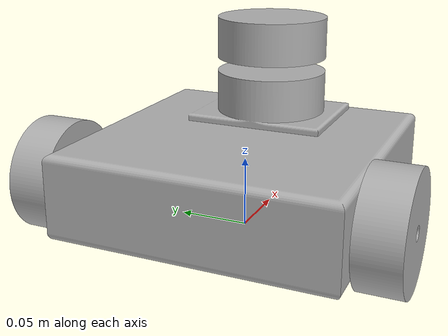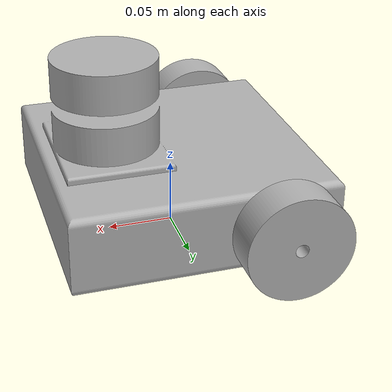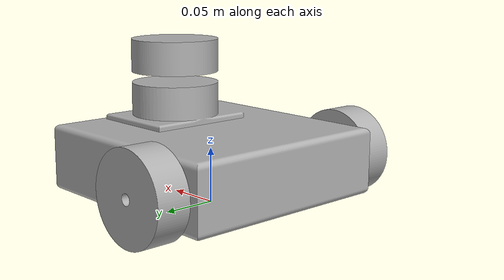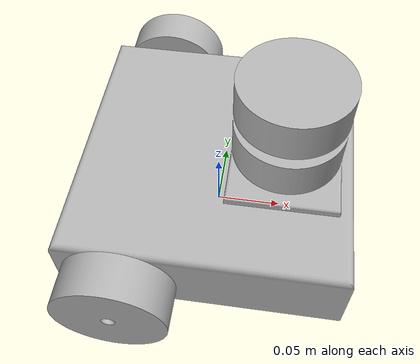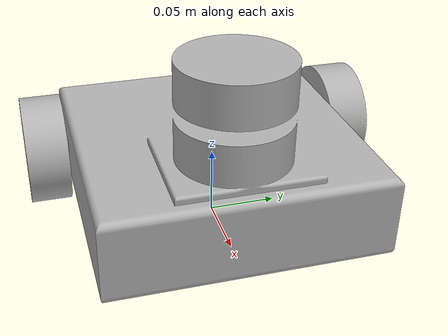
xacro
<?xml version="1.0" ?>
<robot name="AMR" xmlns:xacro="http://www.ros.org/wiki/xacro">

  <xacro:include filename="$(find def_bot)/urdf/def_bot_materials.xacro" />
  <xacro:include filename="$(find def_bot)/urdf/def_bot_gazebo.xacro" />

    <link name="base_link">
      <inertial>
        <origin xyz="0.0037260211530280884 -5.630419889232648e-17 0.04338922715226838" rpy="0 0 0"/>
        <mass value="20.28845748451776"/>
        <inertia ixx="0.071889" iyy="0.07529" izz="0.129659" ixy="-0.0" iyz="-0.0" ixz="-0.003176"/>
      </inertial>
      <visual>
        <origin xyz="0 0 0" rpy="0 0 0"/>
        <geometry>
          <mesh filename="package://def_bot/meshes/base_link.stl" scale="0.001 0.001 0.001"/>
        </geometry>
        <material name="silver"/>
      </visual>
      <collision>
        <origin xyz="0 0 0" rpy="0 0 0"/>
        <geometry>
          <mesh filename="package://def_bot/meshes/base_link.stl" scale="0.001 0.001 0.001"/>
        </geometry>
      </collision>
    </link>

    <link name="right_wheel_link_1">
      <inertial>
        <origin xyz="7.972789095589405e-15 -0.015000000000000041 7.355227538141662e-15" rpy="0 0 0"/>
        <mass value="1.165255985124623"/>
        <inertia ixx="0.000561" iyy="0.000947" izz="0.000561" ixy="-0.0" iyz="-0.0" ixz="0.0"/>
      </inertial>
      <visual>
        <origin xyz="0.055 0.1025 -0.04" rpy="0 0 0"/>
        <geometry>
          <mesh filename="package://def_bot/meshes/right_wheel_link_1.stl" scale="0.001 0.001 0.001"/>
        </geometry>
        <material name="silver"/>
      </visual>
      <collision>
        <origin xyz="0.055 0.1025 -0.04" rpy="0 0 0"/>
        <geometry>
          <mesh filename="package://def_bot/meshes/right_wheel_link_1.stl" scale="0.001 0.001 0.001"/>
        </geometry>
      </collision>
    </link>

    <link name="left_wheel_link_1">
      <inertial>
        <origin xyz="9.228728892196614e-15 0.015000000000000027 6.279698983036042e-15" rpy="0 0 0"/>
        <mass value="1.165255985124623"/>
        <inertia ixx="0.000561" iyy="0.000947" izz="0.000561" ixy="-0.0" iyz="0.0" ixz="0.0"/>
      </inertial>
      <visual>
        <origin xyz="0.055 -0.1025 -0.04" rpy="0 0 0"/>
        <geometry>
          <mesh filename="package://def_bot/meshes/left_wheel_link_1.stl" scale="0.001 0.001 0.001"/>
        </geometry>
        <material name="silver"/>
      </visual>
      <collision>
        <origin xyz="0.055 -0.1025 -0.04" rpy="0 0 0"/>
        <geometry>
          <mesh filename="package://def_bot/meshes/left_wheel_link_1.stl" scale="0.001 0.001 0.001"/>
        </geometry>
      </collision>
    </link>

    <link name="lidar_link_1">
      <inertial>
        <origin xyz="0.0 0.0 0.015000000000000027" rpy="0 0 0"/>
        <mass value="1.183752111872634"/>
        <inertia ixx="0.000562" iyy="0.000562" izz="0.000947" ixy="-0.0" iyz="0.0" ixz="0.0"/>
      </inertial>
      <visual>
        <origin xyz="-0.05 -0.0 -0.105" rpy="0 0 0"/>
        <geometry>
          <mesh filename="package://def_bot/meshes/lidar_link_1.stl" scale="0.001 0.001 0.001"/>
        </geometry>
        <material name="silver"/>
      </visual>
      <collision>
        <origin xyz="-0.05 -0.0 -0.105" rpy="0 0 0"/>
        <geometry>
          <mesh filename="package://def_bot/meshes/lidar_link_1.stl" scale="0.001 0.001 0.001"/>
        </geometry>
      </collision>
    </link>

    <joint name="right_wheel_joint" type="continuous">
      <origin xyz="-0.055 -0.1025 0.04" rpy="0 0 0"/>
      <parent link="base_link"/>
      <child link="right_wheel_link_1"/>
      <axis xyz="0.0 1.0 0.0"/>
    </joint>

    <joint name="left_wheel_joint" type="continuous">
      <origin xyz="-0.055 0.1025 0.04" rpy="0 0 0"/>
      <parent link="base_link"/>
      <child link="left_wheel_link_1"/>
      <axis xyz="0.0 1.0 0.0"/>
    </joint>

    <joint name="lidar_joint" type="fixed">
      <origin xyz="0.05 0.0 0.115" rpy="0 0 0"/>
      <parent link="base_link"/>
      <child link="lidar_link_1"/>
    </joint>

    <ros2_control name="DiffDriveSystem" type="system">
            <hardware>
                <plugin>ign_ros2_control/IgnitionSystem</plugin>
            </hardware>

            <joint name="left_wheel_joint">
                <command_interface name="velocity"/>
                <state_interface name="position"/>
                <state_interface name="velocity"/>
            </joint>

            <joint name="right_wheel_joint">
                <command_interface name="velocity"/>
                <state_interface name="position"/>
                <state_interface name="velocity"/>
            </joint>
        </ros2_control>

</robot>

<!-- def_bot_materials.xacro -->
<robot name="Diff_drive_robot" xmlns:xacro="http://www.ros.org/wiki/xacro" >

<material name="silver">
  <color rgba="0.700 0.700 0.700 1.000"/>
</material>

</robot>

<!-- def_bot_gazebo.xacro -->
<robot name="Diff_drive_robot" xmlns:xacro="http://www.ros.org/wiki/xacro" >

<xacro:property name="body_color" value="Gazebo/Silver" />

        <gazebo reference="base_link">
          <material>${body_color}</material>
          <mu1>0.2</mu1>
          <mu2>0.2</mu2>
          <selfCollide>true</selfCollide>
          <gravity>true</gravity>
        </gazebo>

        <gazebo reference="left_wheel_1">
          <material>${body_color}</material>
          <mu1>0.2</mu1>
          <mu2>0.2</mu2>
          <selfCollide>true</selfCollide>
        </gazebo>

        <gazebo reference="right_wheel_1">
          <material>${body_color}</material>
          <mu1>0.2</mu1>
          <mu2>0.2</mu2>
          <selfCollide>true</selfCollide>
        </gazebo>

        <gazebo reference="lidar_link_1">
          <material>${body_color}</material>
          <mu1>0.2</mu1>
          <mu2>0.2</mu2>
          <selfCollide>true</selfCollide>
        </gazebo>

  <gazebo reference="lidar_link_1">
    <sensor name="lidar" type="gpu_lidar">
        <topic>/scan</topic>
        <update_rate>5</update_rate>
        <gz_frame_id>lidar_link_1</gz_frame_id>
        <ray>
          <scan>
            <horizontal>
              <samples>360</samples>
              <resolution>1</resolution>
              <min_angle>-3.14159</min_angle>
              <max_angle>3.14159</max_angle>
            </horizontal>
          </scan>
          <range>
            <min>0.35</min>
            <max>10.0</max>
            <resolution>0.01</resolution>
          </range>
          <noise>
            <type>gaussian</type>
            <mean>0.0</mean>
            <stddev>0.01</stddev>
          </noise>
        </ray>
        <always_on>true</always_on>
        <visualize>true</visualize>
    </sensor>
  </gazebo>

  <gazebo reference="base_link">
    <sensor name="imu_sensor" type="imu">
      <topic>/imu</topic>
      <update_rate>100</update_rate>
      <gz_frame_id>base_link</gz_frame_id>
      <imu>
        <angular_velocity>
          <x>
            <noise type="gaussian">
              <mean>0.0</mean>
              <stddev>0.009</stddev>
            </noise>
          </x>
          <y>
            <noise type="gaussian">
              <mean>0.0</mean>
              <stddev>0.009</stddev>
            </noise>
          </y>
          <z>
            <noise type="gaussian">
              <mean>0.0</mean>
              <stddev>0.009</stddev>
            </noise>
          </z>
        </angular_velocity>
        <linear_acceleration>
          <x>
            <noise type="gaussian">
              <mean>0.0</mean>
              <stddev>0.021</stddev>
            </noise>
          </x>
          <y>
            <noise type="gaussian">
              <mean>0.0</mean>
              <stddev>0.021</stddev>
            </noise>
          </y>
          <z>
            <noise type="gaussian">
              <mean>0.0</mean>
              <stddev>0.021</stddev>
            </noise>
          </z>
        </linear_acceleration>
      </imu>
      <always_on>true</always_on>
      <visualize>false</visualize>
    </sensor>
  </gazebo>

  <gazebo>
      <plugin filename="ign_ros2_control-system" name="ign_ros2_control::IgnitionROS2ControlPlugin">
        <parameters>$(find def_bot)/config/controller.yaml</parameters>
      </plugin>
  </gazebo>

  <gazebo>
    <plugin filename="ignition-gazebo-sensors-system"
            name="ignition::gazebo::systems::Sensors">
      <render_engine>ogre</render_engine>
    </plugin>
  </gazebo>

</robot>
